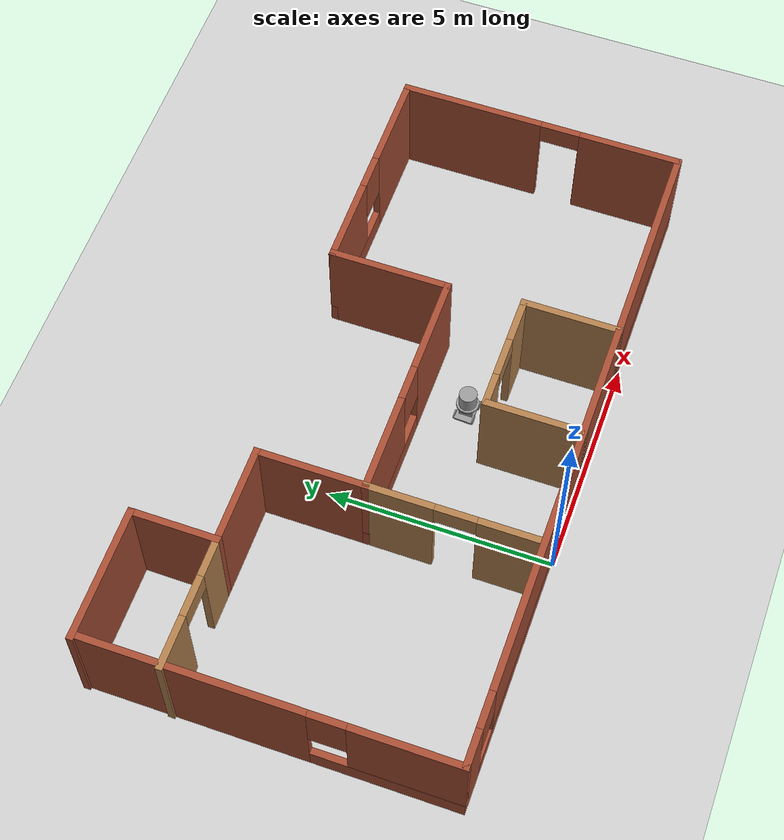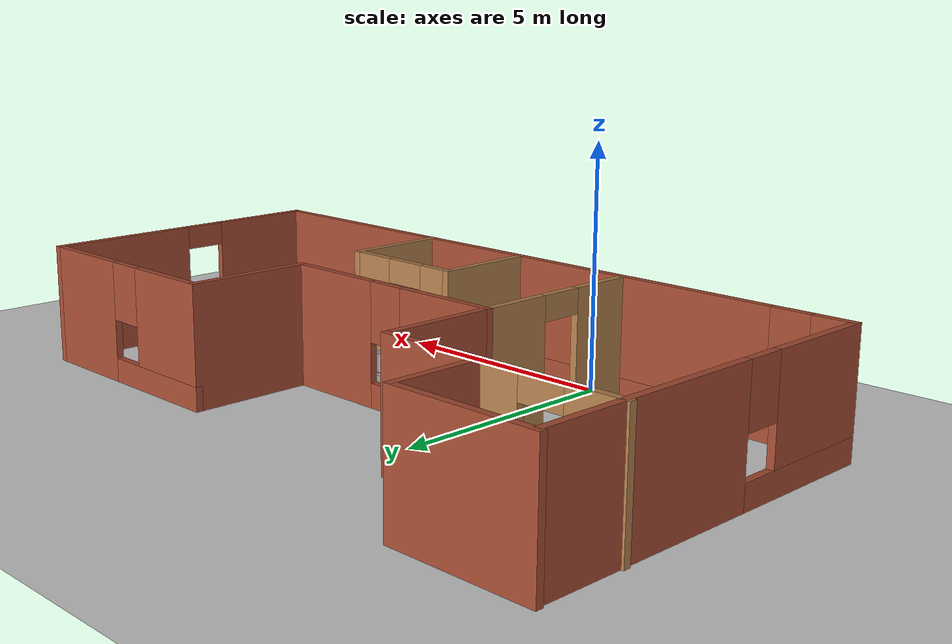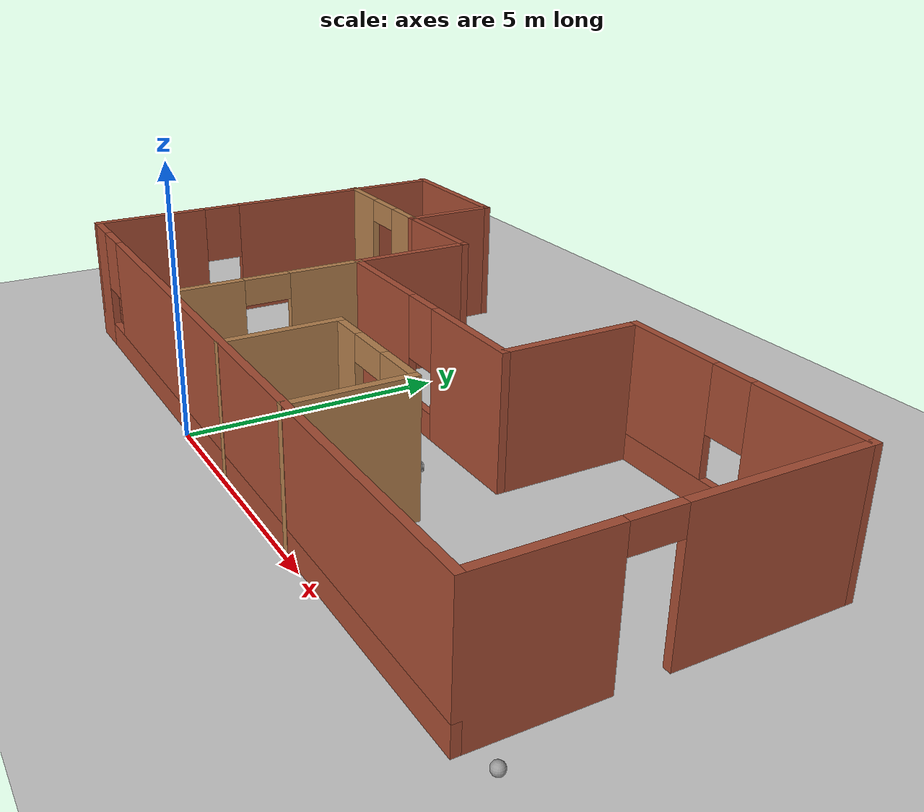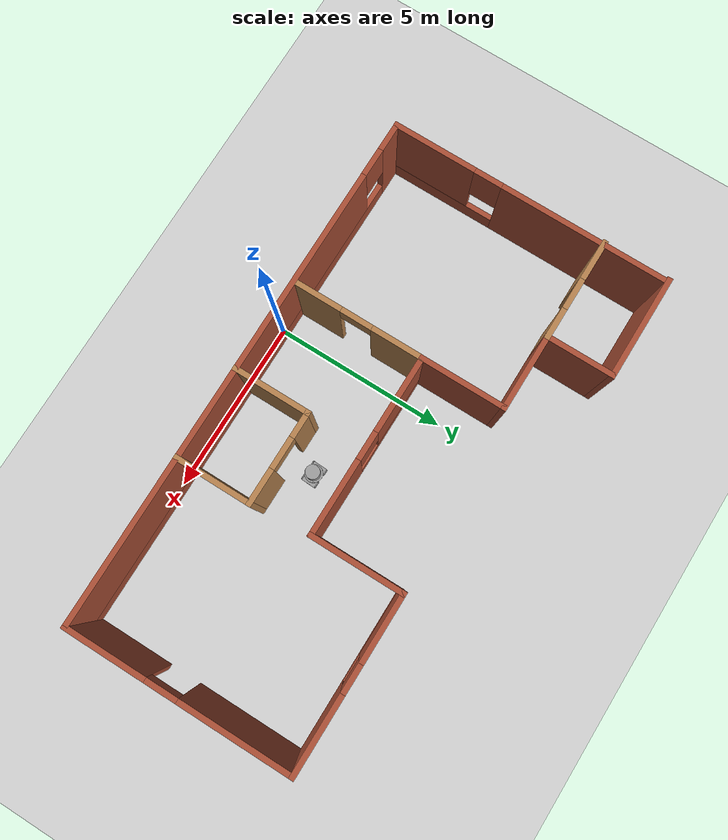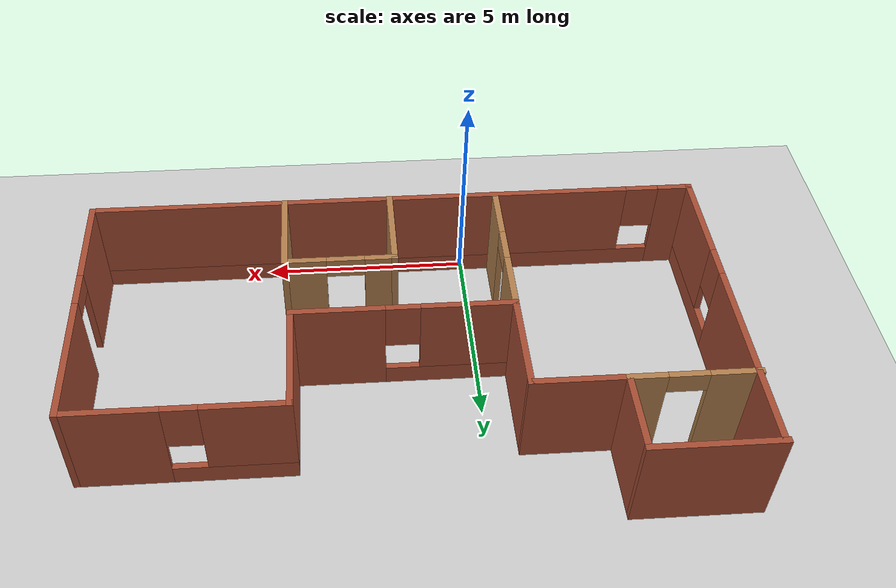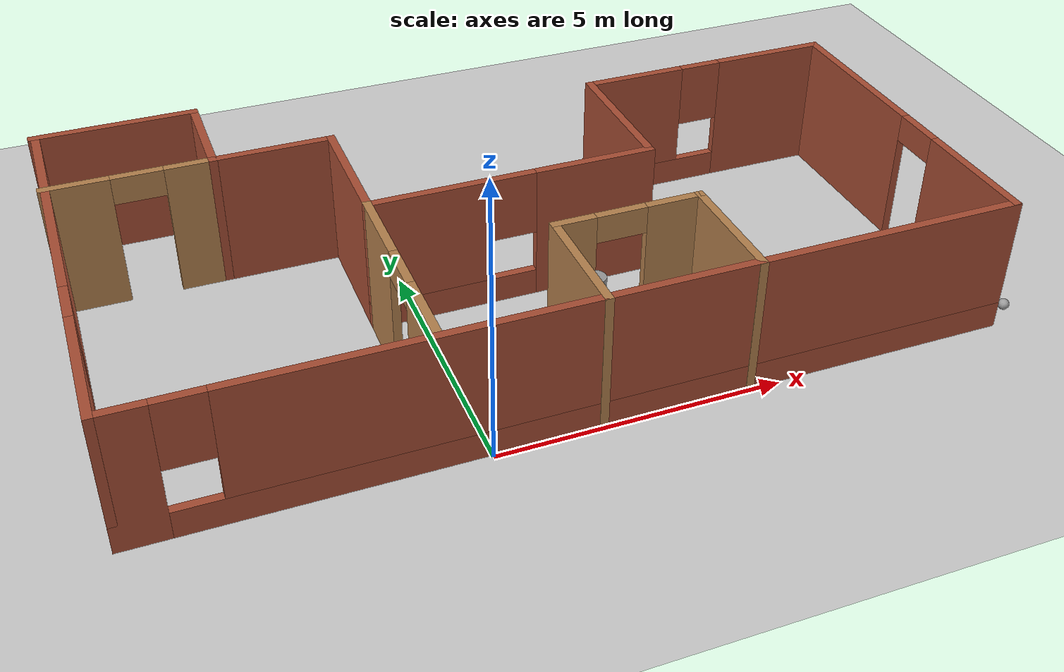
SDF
<sdf version="1.6">
 <world name="default">
  <model name="ground_plane">
   <static>1</static>
   <link name="link">
    <collision name="collision">
     <geometry><plane><normal>0 0 1</normal><size>100 100</size></plane></geometry>
     <surface>
      <contact><collide_bitmask>65535</collide_bitmask></contact>
      <friction><ode><mu>100</mu><mu2>50</mu2></ode></friction>
     </surface>
    </collision>
    <visual name="visual">
     <cast_shadows>0</cast_shadows>
     <geometry><plane><normal>0 0 1</normal><size>100 100</size></plane></geometry>
     <material>
      <script><uri>file://media/materials/scripts/gazebo.material</uri><name>Gazebo/Grey</name></script>
     </material>
    </visual>
   </link>
  </model>
  <model name="School">
   <pose>1.72931 4.07996 0 0 -0 0</pose>
   <link name="Wall_10">
    <collision name="Wall_10_Collision">
     <geometry><box><size>2.25 0.15 2.5</size></box></geometry>
     <pose>0 0 1.25 0 -0 0</pose>
    </collision>
    <visual name="Wall_10_Visual">
     <pose>0 0 1.25 0 -0 0</pose>
     <geometry><box><size>2.25 0.15 2.5</size></box></geometry>
     <material>
      <script><uri>file://media/materials/scripts/gazebo.material</uri><name>Gazebo/Bricks</name></script>
      <ambient>1 1 1 1</ambient>
     </material>
     <meta><layer>0</layer></meta>
    </visual>
    <pose>-3.55 2.12783 0 0 -0 3.14159</pose>
   </link>
   <link name="Wall_15">
    <collision name="Wall_15_Collision">
     <geometry><box><size>2 0.15 2.5</size></box></geometry>
     <pose>0 0 1.25 0 -0 0</pose>
    </collision>
    <visual name="Wall_15_Visual">
     <pose>0 0 1.25 0 -0 0</pose>
     <geometry><box><size>2 0.15 2.5</size></box></geometry>
     <material>
      <script><uri>file://media/materials/scripts/gazebo.material</uri><name>Gazebo/Bricks</name></script>
      <ambient>1 1 1 1</ambient>
     </material>
     <meta><layer>0</layer></meta>
    </visual>
    <pose>-4.6 3.05282 0 0 -0 1.5708</pose>
   </link>
   <link name="Wall_16">
    <collision name="Wall_16_Collision">
     <geometry><box><size>3 0.15 2.5</size></box></geometry>
     <pose>0 0 1.25 0 -0 0</pose>
    </collision>
    <visual name="Wall_16_Visual">
     <pose>0 0 1.25 0 -0 0</pose>
     <geometry><box><size>3 0.15 2.5</size></box></geometry>
     <material>
      <script><uri>file://media/materials/scripts/gazebo.material</uri><name>Gazebo/Bricks</name></script>
      <ambient>1 1 1 1</ambient>
     </material>
     <meta><layer>0</layer></meta>
    </visual>
    <pose>-6.025 3.97783 0 0 -0 3.14159</pose>
   </link>
   <link name="Wall_21">
    <pose>-6.025 2.12783 0 0 -0 3.14159</pose>
    <visual name="Wall_21_Visual_0">
     <pose>-1.04133 0 1.25 0 -0 0</pose>
     <geometry><box><size>0.91735 0.15 2.5</size></box></geometry>
     <material>
      <script><uri>file://media/materials/scripts/gazebo.material</uri><name>Gazebo/Wood</name></script>
      <ambient>1 1 1 1</ambient>
     </material>
     <meta><layer>0</layer></meta>
    </visual>
    <collision name="Wall_21_Collision_0">
     <geometry><box><size>0.91735 0.15 2.5</size></box></geometry>
     <pose>-1.04133 0 1.25 0 -0 0</pose>
    </collision>
    <visual name="Wall_21_Visual_1">
     <pose>0.908675 0 1.25 0 -0 0</pose>
     <geometry><box><size>1.18265 0.15 2.5</size></box></geometry>
     <material>
      <script><uri>file://media/materials/scripts/gazebo.material</uri><name>Gazebo/Wood</name></script>
      <ambient>1 1 1 1</ambient>
     </material>
     <meta><layer>0</layer></meta>
    </visual>
    <collision name="Wall_21_Collision_1">
     <geometry><box><size>1.18265 0.15 2.5</size></box></geometry>
     <pose>0.908675 0 1.25 0 -0 0</pose>
    </collision>
    <visual name="Wall_21_Visual_2">
     <pose>-0.13265 0 2.25 0 -0 0</pose>
     <geometry><box><size>0.9 0.15 0.5</size></box></geometry>
     <material>
      <script><uri>file://media/materials/scripts/gazebo.material</uri><name>Gazebo/Wood</name></script>
      <ambient>1 1 1 1</ambient>
     </material>
     <meta><layer>0</layer></meta>
    </visual>
    <collision name="Wall_21_Collision_2">
     <geometry><box><size>0.9 0.15 0.5</size></box></geometry>
     <pose>-0.13265 0 2.25 0 -0 0</pose>
    </collision>
   </link>
   <link name="Wall_23">
    <pose>-2.5 -2.02217 0 0 0 -1.5708</pose>
    <visual name="Wall_23_Visual_0">
     <pose>-1.11042 0 1.25 0 -0 0</pose>
     <geometry><box><size>1.52915 0.15 2.5</size></box></geometry>
     <material>
      <script><uri>file://media/materials/scripts/gazebo.material</uri><name>Gazebo/Wood</name></script>
      <ambient>1 1 1 1</ambient>
     </material>
     <meta><layer>0</layer></meta>
    </visual>
    <collision name="Wall_23_Collision_0">
     <geometry><box><size>1.52915 0.15 2.5</size></box></geometry>
     <pose>-1.11042 0 1.25 0 -0 0</pose>
    </collision>
    <visual name="Wall_23_Visual_1">
     <pose>1.21457 0 1.25 0 -0 0</pose>
     <geometry><box><size>1.32085 0.15 2.5</size></box></geometry>
     <material>
      <script><uri>file://media/materials/scripts/gazebo.material</uri><name>Gazebo/Wood</name></script>
      <ambient>1 1 1 1</ambient>
     </material>
     <meta><layer>0</layer></meta>
    </visual>
    <collision name="Wall_23_Collision_1">
     <geometry><box><size>1.32085 0.15 2.5</size></box></geometry>
     <pose>1.21457 0 1.25 0 -0 0</pose>
    </collision>
    <visual name="Wall_23_Visual_2">
     <pose>0.10415 0 2.25 0 -0 0</pose>
     <geometry><box><size>0.9 0.15 0.5</size></box></geometry>
     <material>
      <script><uri>file://media/materials/scripts/gazebo.material</uri><name>Gazebo/Wood</name></script>
      <ambient>1 1 1 1</ambient>
     </material>
     <meta><layer>0</layer></meta>
    </visual>
    <collision name="Wall_23_Collision_2">
     <geometry><box><size>0.9 0.15 0.5</size></box></geometry>
     <pose>0.10415 0 2.25 0 -0 0</pose>
    </collision>
   </link>
   <link name="Wall_25">
    <collision name="Wall_25_Collision">
     <geometry><box><size>2.25 0.15 2.5</size></box></geometry>
     <pose>0 0 1.25 0 -0 0</pose>
    </collision>
    <visual name="Wall_25_Visual">
     <pose>0 0 1.25 0 -0 0</pose>
     <geometry><box><size>2.25 0.15 2.5</size></box></geometry>
     <material>
      <script><uri>file://media/materials/scripts/gazebo.material</uri><name>Gazebo/Wood</name></script>
      <ambient>1 1 1 1</ambient>
     </material>
     <meta><layer>0</layer></meta>
    </visual>
    <pose>0.13825 -2.92782 0 0 -0 1.5708</pose>
   </link>
   <link name="Wall_26">
    <pose>1.43825 -1.87783 0 0 -0 0</pose>
    <visual name="Wall_26_Visual_0">
     <pose>-0.9806 0 1.25 0 -0 0</pose>
     <geometry><box><size>0.7888 0.15 2.5</size></box></geometry>
     <material>
      <script><uri>file://media/materials/scripts/gazebo.material</uri><name>Gazebo/Wood</name></script>
      <ambient>1 1 1 1</ambient>
     </material>
     <meta><layer>0</layer></meta>
    </visual>
    <collision name="Wall_26_Collision_0">
     <geometry><box><size>0.7888 0.15 2.5</size></box></geometry>
     <pose>-0.9806 0 1.25 0 -0 0</pose>
    </collision>
    <visual name="Wall_26_Visual_1">
     <pose>0.8444 0 1.25 0 -0 0</pose>
     <geometry><box><size>1.0612 0.15 2.5</size></box></geometry>
     <material>
      <script><uri>file://media/materials/scripts/gazebo.material</uri><name>Gazebo/Wood</name></script>
      <ambient>1 1 1 1</ambient>
     </material>
     <meta><layer>0</layer></meta>
    </visual>
    <collision name="Wall_26_Collision_1">
     <geometry><box><size>1.0612 0.15 2.5</size></box></geometry>
     <pose>0.8444 0 1.25 0 -0 0</pose>
    </collision>
    <visual name="Wall_26_Visual_2">
     <pose>-0.1362 0 2.25 0 -0 0</pose>
     <geometry><box><size>0.9 0.15 0.5</size></box></geometry>
     <material>
      <script><uri>file://media/materials/scripts/gazebo.material</uri><name>Gazebo/Wood</name></script>
      <ambient>1 1 1 1</ambient>
     </material>
     <meta><layer>0</layer></meta>
    </visual>
    <collision name="Wall_26_Collision_2">
     <geometry><box><size>0.9 0.15 0.5</size></box></geometry>
     <pose>-0.1362 0 2.25 0 -0 0</pose>
    </collision>
   </link>
   <link name="Wall_27">
    <collision name="Wall_27_Collision">
     <geometry><box><size>2.25 0.15 2.5</size></box></geometry>
     <pose>0 0 1.25 0 -0 0</pose>
    </collision>
    <visual name="Wall_27_Visual">
     <pose>0 0 1.25 0 -0 0</pose>
     <geometry><box><size>2.25 0.15 2.5</size></box></geometry>
     <material>
      <script><uri>file://media/materials/scripts/gazebo.material</uri><name>Gazebo/Wood</name></script>
      <ambient>1 1 1 1</ambient>
     </material>
     <meta><layer>0</layer></meta>
    </visual>
    <pose>2.73825 -2.92782 0 0 0 -1.5708</pose>
   </link>
   <link name="Wall_3">
    <pose>-7.4 -0.047175 0 0 0 -1.5708</pose>
    <visual name="Wall_3_Visual_0">
     <pose>-1.61007 0 1.25 0 -0 0</pose>
     <geometry><box><size>4.77985 0.15 2.5</size></box></geometry>
     <material>
      <script><uri>file://media/materials/scripts/gazebo.material</uri><name>Gazebo/Bricks</name></script>
      <ambient>1 1 1 1</ambient>
     </material>
     <meta><layer>0</layer></meta>
    </visual>
    <collision name="Wall_3_Collision_0">
     <geometry><box><size>4.77985 0.15 2.5</size></box></geometry>
     <pose>-1.61007 0 1.25 0 -0 0</pose>
    </collision>
    <visual name="Wall_3_Visual_1">
     <pose>2.38992 0 0.25 0 -0 0</pose>
     <geometry><box><size>3.22015 0.15 0.5</size></box></geometry>
     <material>
      <script><uri>file://media/materials/scripts/gazebo.material</uri><name>Gazebo/Bricks</name></script>
      <ambient>1 1 1 1</ambient>
     </material>
     <meta><layer>0</layer></meta>
    </visual>
    <collision name="Wall_3_Collision_1">
     <geometry><box><size>3.22015 0.15 0.5</size></box></geometry>
     <pose>2.38992 0 0.25 0 -0 0</pose>
    </collision>
    <visual name="Wall_3_Visual_2">
     <pose>2.78993 0 1.5 0 -0 0</pose>
     <geometry><box><size>2.42015 0.15 2</size></box></geometry>
     <material>
      <script><uri>file://media/materials/scripts/gazebo.material</uri><name>Gazebo/Bricks</name></script>
      <ambient>1 1 1 1</ambient>
     </material>
     <meta><layer>0</layer></meta>
    </visual>
    <collision name="Wall_3_Collision_2">
     <geometry><box><size>2.42015 0.15 2</size></box></geometry>
     <pose>2.78993 0 1.5 0 -0 0</pose>
    </collision>
    <visual name="Wall_3_Visual_3">
     <pose>1.17985 0 1.9 0 -0 0</pose>
     <geometry><box><size>0.8 0.15 1.2</size></box></geometry>
     <material>
      <script><uri>file://media/materials/scripts/gazebo.material</uri><name>Gazebo/Bricks</name></script>
      <ambient>1 1 1 1</ambient>
     </material>
     <meta><layer>0</layer></meta>
    </visual>
    <collision name="Wall_3_Collision_3">
     <geometry><box><size>0.8 0.15 1.2</size></box></geometry>
     <pose>1.17985 0 1.9 0 -0 0</pose>
    </collision>
   </link>
   <link name="Wall_4">
    <pose>0.024999 -3.97218 0 0 -0 0</pose>
    <visual name="Wall_4_Visual_0">
     <pose>-7.06738 0 1.25 0 -0 0</pose>
     <geometry><box><size>0.86525 0.15 2.5</size></box></geometry>
     <material>
      <script><uri>file://media/materials/scripts/gazebo.material</uri><name>Gazebo/Bricks</name></script>
      <ambient>1 1 1 1</ambient>
     </material>
     <meta><layer>0</layer></meta>
    </visual>
    <collision name="Wall_4_Collision_0">
     <geometry><box><size>0.86525 0.15 2.5</size></box></geometry>
     <pose>-7.06738 0 1.25 0 -0 0</pose>
    </collision>
    <visual name="Wall_4_Visual_1">
     <pose>0.432625 0 0.25 0 -0 0</pose>
     <geometry><box><size>14.1348 0.15 0.5</size></box></geometry>
     <material>
      <script><uri>file://media/materials/scripts/gazebo.material</uri><name>Gazebo/Bricks</name></script>
      <ambient>1 1 1 1</ambient>
     </material>
     <meta><layer>0</layer></meta>
    </visual>
    <collision name="Wall_4_Collision_1">
     <geometry><box><size>14.1348 0.15 0.5</size></box></geometry>
     <pose>0.432625 0 0.25 0 -0 0</pose>
    </collision>
    <visual name="Wall_4_Visual_2">
     <pose>0.832625 0 1.5 0 -0 0</pose>
     <geometry><box><size>13.3347 0.15 2</size></box></geometry>
     <material>
      <script><uri>file://media/materials/scripts/gazebo.material</uri><name>Gazebo/Bricks</name></script>
      <ambient>1 1 1 1</ambient>
     </material>
     <meta><layer>0</layer></meta>
    </visual>
    <collision name="Wall_4_Collision_2">
     <geometry><box><size>13.3347 0.15 2</size></box></geometry>
     <pose>0.832625 0 1.5 0 -0 0</pose>
    </collision>
    <visual name="Wall_4_Visual_3">
     <pose>-6.23475 0 1.9 0 -0 0</pose>
     <geometry><box><size>0.8 0.15 1.2</size></box></geometry>
     <material>
      <script><uri>file://media/materials/scripts/gazebo.material</uri><name>Gazebo/Bricks</name></script>
      <ambient>1 1 1 1</ambient>
     </material>
     <meta><layer>0</layer></meta>
    </visual>
    <collision name="Wall_4_Collision_3">
     <geometry><box><size>0.8 0.15 1.2</size></box></geometry>
     <pose>-6.23475 0 1.9 0 -0 0</pose>
    </collision>
   </link>
   <link name="Wall_5">
    <pose>7.45 -0.797175 0 0 -0 1.5708</pose>
    <visual name="Wall_5_Visual_0">
     <pose>-2.07815 0 1.25 0 -0 0</pose>
     <geometry><box><size>2.3437 0.15 2.5</size></box></geometry>
     <material>
      <script><uri>file://media/materials/scripts/gazebo.material</uri><name>Gazebo/Bricks</name></script>
      <ambient>0.435294 0.796078 0.67451 1</ambient>
     </material>
     <meta><layer>0</layer></meta>
    </visual>
    <collision name="Wall_5_Collision_0">
     <geometry><box><size>2.3437 0.15 2.5</size></box></geometry>
     <pose>-2.07815 0 1.25 0 -0 0</pose>
    </collision>
    <visual name="Wall_5_Visual_1">
     <pose>1.62185 0 1.25 0 -0 0</pose>
     <geometry><box><size>3.2563 0.15 2.5</size></box></geometry>
     <material>
      <script><uri>file://media/materials/scripts/gazebo.material</uri><name>Gazebo/Bricks</name></script>
      <ambient>0.435294 0.796078 0.67451 1</ambient>
     </material>
     <meta><layer>0</layer></meta>
    </visual>
    <collision name="Wall_5_Collision_1">
     <geometry><box><size>3.2563 0.15 2.5</size></box></geometry>
     <pose>1.62185 0 1.25 0 -0 0</pose>
    </collision>
    <visual name="Wall_5_Visual_2">
     <pose>-0.4563 0 2.25 0 -0 0</pose>
     <geometry><box><size>0.9 0.15 0.5</size></box></geometry>
     <material>
      <script><uri>file://media/materials/scripts/gazebo.material</uri><name>Gazebo/Bricks</name></script>
      <ambient>0.435294 0.796078 0.67451 1</ambient>
     </material>
     <meta><layer>0</layer></meta>
    </visual>
    <collision name="Wall_5_Collision_2">
     <geometry><box><size>0.9 0.15 0.5</size></box></geometry>
     <pose>-0.4563 0 2.25 0 -0 0</pose>
    </collision>
   </link>
   <link name="Wall_6">
    <pose>5.025 2.37783 0 0 -0 3.14159</pose>
    <visual name="Wall_6_Visual_0">
     <pose>-1.38712 0 1.25 0 -0 0</pose>
     <geometry><box><size>2.22575 0.15 2.5</size></box></geometry>
     <material>
      <script><uri>file://media/materials/scripts/gazebo.material</uri><name>Gazebo/Bricks</name></script>
      <ambient>1 1 1 1</ambient>
     </material>
     <meta><layer>0</layer></meta>
    </visual>
    <collision name="Wall_6_Collision_0">
     <geometry><box><size>2.22575 0.15 2.5</size></box></geometry>
     <pose>-1.38712 0 1.25 0 -0 0</pose>
    </collision>
    <visual name="Wall_6_Visual_1">
     <pose>1.11288 0 0.25 0 -0 0</pose>
     <geometry><box><size>2.77425 0.15 0.5</size></box></geometry>
     <material>
      <script><uri>file://media/materials/scripts/gazebo.material</uri><name>Gazebo/Bricks</name></script>
      <ambient>1 1 1 1</ambient>
     </material>
     <meta><layer>0</layer></meta>
    </visual>
    <collision name="Wall_6_Collision_1">
     <geometry><box><size>2.77425 0.15 0.5</size></box></geometry>
     <pose>1.11288 0 0.25 0 -0 0</pose>
    </collision>
    <visual name="Wall_6_Visual_2">
     <pose>1.51287 0 1.5 0 -0 0</pose>
     <geometry><box><size>1.97425 0.15 2</size></box></geometry>
     <material>
      <script><uri>file://media/materials/scripts/gazebo.material</uri><name>Gazebo/Bricks</name></script>
      <ambient>1 1 1 1</ambient>
     </material>
     <meta><layer>0</layer></meta>
    </visual>
    <collision name="Wall_6_Collision_2">
     <geometry><box><size>1.97425 0.15 2</size></box></geometry>
     <pose>1.51287 0 1.5 0 -0 0</pose>
    </collision>
    <visual name="Wall_6_Visual_3">
     <pose>0.12575 0 1.9 0 -0 0</pose>
     <geometry><box><size>0.8 0.15 1.2</size></box></geometry>
     <material>
      <script><uri>file://media/materials/scripts/gazebo.material</uri><name>Gazebo/Bricks</name></script>
      <ambient>1 1 1 1</ambient>
     </material>
     <meta><layer>0</layer></meta>
    </visual>
    <collision name="Wall_6_Collision_3">
     <geometry><box><size>0.8 0.15 1.2</size></box></geometry>
     <pose>0.12575 0 1.9 0 -0 0</pose>
    </collision>
   </link>
   <link name="Wall_7">
    <collision name="Wall_7_Collision">
     <geometry><box><size>2.75 0.15 2.5</size></box></geometry>
     <pose>0 0 1.25 0 -0 0</pose>
    </collision>
    <visual name="Wall_7_Visual">
     <pose>0 0 1.25 0 -0 0</pose>
     <geometry><box><size>2.75 0.15 2.5</size></box></geometry>
     <material>
      <script><uri>file://media/materials/scripts/gazebo.material</uri><name>Gazebo/Bricks</name></script>
      <ambient>1 1 1 1</ambient>
     </material>
     <meta><layer>0</layer></meta>
    </visual>
    <pose>2.6 1.07783 0 0 0 -1.5708</pose>
   </link>
   <link name="Wall_8">
    <pose>0.05 -0.222175 0 0 -0 3.14159</pose>
    <visual name="Wall_8_Visual_0">
     <pose>-1.51695 0 1.25 0 -0 0</pose>
     <geometry><box><size>2.2161 0.15 2.5</size></box></geometry>
     <material>
      <script><uri>file://media/materials/scripts/gazebo.material</uri><name>Gazebo/Bricks</name></script>
      <ambient>1 1 1 1</ambient>
     </material>
     <meta><layer>0</layer></meta>
    </visual>
    <collision name="Wall_8_Collision_0">
     <geometry><box><size>2.2161 0.15 2.5</size></box></geometry>
     <pose>-1.51695 0 1.25 0 -0 0</pose>
    </collision>
    <visual name="Wall_8_Visual_1">
     <pose>1.10805 0 0.25 0 -0 0</pose>
     <geometry><box><size>3.0339 0.15 0.5</size></box></geometry>
     <material>
      <script><uri>file://media/materials/scripts/gazebo.material</uri><name>Gazebo/Bricks</name></script>
      <ambient>1 1 1 1</ambient>
     </material>
     <meta><layer>0</layer></meta>
    </visual>
    <collision name="Wall_8_Collision_1">
     <geometry><box><size>3.0339 0.15 0.5</size></box></geometry>
     <pose>1.10805 0 0.25 0 -0 0</pose>
    </collision>
    <visual name="Wall_8_Visual_2">
     <pose>1.50805 0 1.5 0 -0 0</pose>
     <geometry><box><size>2.2339 0.15 2</size></box></geometry>
     <material>
      <script><uri>file://media/materials/scripts/gazebo.material</uri><name>Gazebo/Bricks</name></script>
      <ambient>1 1 1 1</ambient>
     </material>
     <meta><layer>0</layer></meta>
    </visual>
    <collision name="Wall_8_Collision_2">
     <geometry><box><size>2.2339 0.15 2</size></box></geometry>
     <pose>1.50805 0 1.5 0 -0 0</pose>
    </collision>
    <visual name="Wall_8_Visual_3">
     <pose>-0.0089 0 1.9 0 -0 0</pose>
     <geometry><box><size>0.8 0.15 1.2</size></box></geometry>
     <material>
      <script><uri>file://media/materials/scripts/gazebo.material</uri><name>Gazebo/Bricks</name></script>
      <ambient>1 1 1 1</ambient>
     </material>
     <meta><layer>0</layer></meta>
    </visual>
    <collision name="Wall_8_Collision_3">
     <geometry><box><size>0.8 0.15 1.2</size></box></geometry>
     <pose>-0.0089 0 1.9 0 -0 0</pose>
    </collision>
   </link>
   <link name="Wall_9">
    <collision name="Wall_9_Collision">
     <geometry><box><size>2.5 0.15 2.5</size></box></geometry>
     <pose>0 0 1.25 0 -0 0</pose>
    </collision>
    <visual name="Wall_9_Visual">
     <pose>0 0 1.25 0 -0 0</pose>
     <geometry><box><size>2.5 0.15 2.5</size></box></geometry>
     <material>
      <script><uri>file://media/materials/scripts/gazebo.material</uri><name>Gazebo/Bricks</name></script>
      <ambient>1 1 1 1</ambient>
     </material>
     <meta><layer>0</layer></meta>
    </visual>
    <pose>-2.5 0.952825 0 0 -0 1.5708</pose>
   </link>
   <static>1</static>
  </model>
  <model name="4x4_robot">
   <link name="link_0">
    <pose>-0 0 -0.02 0 -0 0</pose>
    <inertial>
     <mass>1</mass>
     <inertia>
      <ixx>0.166667</ixx>
      <ixy>0</ixy>
      <ixz>0</ixz>
      <iyy>0.166667</iyy>
      <iyz>0</iyz>
      <izz>0.166667</izz>
     </inertia>
    </inertial>
    <visual name="visual">
     <geometry><box><size>0.6 0.4 0.05</size></box></geometry>
     <material>
      <lighting>1</lighting>
      <script><uri>file://media/materials/scripts/gazebo.material</uri><name>Gazebo/Grey</name></script>
      <shader type="pixel"><normal_map>__default__</normal_map></shader>
      <ambient>0.3 0.3 0.3 1</ambient>
      <diffuse>0.7 0.7 0.7 1</diffuse>
      <specular>0.01 0.01 0.01 1</specular>
      <emissive>0 0 0 1</emissive>
     </material>
    </visual>
    <collision name="collision">
     <geometry><box><size>0.6 0.4 0.05</size></box></geometry>
     <surface>
      <friction>
       <ode><mu>1</mu><mu2>1</mu2><fdir1>0 0 0</fdir1><slip1>0</slip1><slip2>0</slip2></ode>
       <torsional>
        <coefficient>1</coefficient>
        <patch_radius>0</patch_radius>
        <surface_radius>0</surface_radius>
        <use_patch_radius>1</use_patch_radius>
        <ode><slip>0</slip></ode>
       </torsional>
      </friction>
      <bounce><restitution_coefficient>0</restitution_coefficient><threshold>1e+06</threshold></bounce>
      <contact>
       <collide_without_contact>0</collide_without_contact>
       <collide_without_contact_bitmask>1</collide_without_contact_bitmask>
       <collide_bitmask>1</collide_bitmask>
       <ode>
        <soft_cfm>0</soft_cfm>
        <soft_erp>0.2</soft_erp>
        <kp>1e+13</kp>
        <kd>1</kd>
        <max_vel>0.01</max_vel>
        <min_depth>0</min_depth>
       </ode>
       <bullet>
        <split_impulse>1</split_impulse>
        <split_impulse_penetration_threshold>-0.01</split_impulse_penetration_threshold>
        <soft_cfm>0</soft_cfm>
        <soft_erp>0.2</soft_erp>
        <kp>1e+13</kp>
        <kd>1</kd>
       </bullet>
      </contact>
     </surface>
    </collision>
   </link>
   <link name="link_0_0">
    <pose>9.4e-05 1e-06 0.104673 2.5e-05 0.001086 0.029379</pose>
    <inertial>
     <mass>1</mass>
     <inertia>
      <ixx>0.166667</ixx>
      <ixy>0</ixy>
      <ixz>0</ixz>
      <iyy>0.166667</iyy>
      <iyz>0</iyz>
      <izz>0.166667</izz>
     </inertia>
    </inertial>
    <visual name="visual">
     <geometry><box><size>0.3 0.3 0.3</size></box></geometry>
     <material>
      <lighting>1</lighting>
      <script><uri>file://media/materials/scripts/gazebo.material</uri><name>Gazebo/Grey</name></script>
      <shader type="pixel"><normal_map>__default__</normal_map></shader>
      <ambient>0.3 0.3 0.3 1</ambient>
      <diffuse>0.7 0.7 0.7 1</diffuse>
      <specular>0.01 0.01 0.01 1</specular>
      <emissive>0 0 0 1</emissive>
     </material>
    </visual>
    <collision name="collision">
     <geometry><box><size>0.3 0.3 0.3</size></box></geometry>
     <surface>
      <friction>
       <ode><mu>1</mu><mu2>1</mu2><fdir1>0 0 0</fdir1><slip1>0</slip1><slip2>0</slip2></ode>
       <torsional>
        <coefficient>1</coefficient>
        <patch_radius>0</patch_radius>
        <surface_radius>0</surface_radius>
        <use_patch_radius>1</use_patch_radius>
        <ode><slip>0</slip></ode>
       </torsional>
      </friction>
      <bounce><restitution_coefficient>0</restitution_coefficient><threshold>1e+06</threshold></bounce>
      <contact>
       <collide_without_contact>0</collide_without_contact>
       <collide_without_contact_bitmask>1</collide_without_contact_bitmask>
       <collide_bitmask>1</collide_bitmask>
       <ode>
        <soft_cfm>0</soft_cfm>
        <soft_erp>0.2</soft_erp>
        <kp>1e+13</kp>
        <kd>1</kd>
        <max_vel>0.01</max_vel>
        <min_depth>0</min_depth>
       </ode>
       <bullet>
        <split_impulse>1</split_impulse>
        <split_impulse_penetration_threshold>-0.01</split_impulse_penetration_threshold>
        <soft_cfm>0</soft_cfm>
        <soft_erp>0.2</soft_erp>
        <kp>1e+13</kp>
        <kd>1</kd>
       </bullet>
      </contact>
     </surface>
    </collision>
   </link>
   <link name="link_1">
    <pose>0.2 0.2125 0.005 1.5708 -0 0</pose>
    <inertial>
     <mass>1</mass>
     <inertia><ixx>0.145833</ixx><ixy>0</ixy><ixz>0</ixz><iyy>0.145833</iyy><iyz>0</iyz><izz>0.125</izz></inertia>
    </inertial>
    <visual name="visual">
     <geometry><cylinder><radius>0.1</radius><length>0.025</length></cylinder></geometry>
     <material>
      <lighting>1</lighting>
      <script><uri>file://media/materials/scripts/gazebo.material</uri><name>Gazebo/Grey</name></script>
      <shader type="pixel"><normal_map>__default__</normal_map></shader>
      <ambient>0.3 0.3 0.3 1</ambient>
      <diffuse>0.7 0.7 0.7 1</diffuse>
      <specular>0.01 0.01 0.01 1</specular>
      <emissive>0 0 0 1</emissive>
     </material>
    </visual>
    <collision name="collision">
     <geometry><cylinder><radius>0.1</radius><length>0.025</length></cylinder></geometry>
     <surface>
      <friction>
       <ode><mu>1</mu><mu2>1</mu2><fdir1>0 0 0</fdir1><slip1>0</slip1><slip2>0</slip2></ode>
       <torsional>
        <coefficient>1</coefficient>
        <patch_radius>0</patch_radius>
        <surface_radius>0</surface_radius>
        <use_patch_radius>1</use_patch_radius>
        <ode><slip>0</slip></ode>
       </torsional>
      </friction>
      <bounce><restitution_coefficient>0</restitution_coefficient><threshold>1e+06</threshold></bounce>
      <contact>
       <collide_without_contact>0</collide_without_contact>
       <collide_without_contact_bitmask>1</collide_without_contact_bitmask>
       <collide_bitmask>1</collide_bitmask>
       <ode>
        <soft_cfm>0</soft_cfm>
        <soft_erp>0.2</soft_erp>
        <kp>1e+13</kp>
        <kd>1</kd>
        <max_vel>0.01</max_vel>
        <min_depth>0</min_depth>
       </ode>
       <bullet>
        <split_impulse>1</split_impulse>
        <split_impulse_penetration_threshold>-0.01</split_impulse_penetration_threshold>
        <soft_cfm>0</soft_cfm>
        <soft_erp>0.2</soft_erp>
        <kp>1e+13</kp>
        <kd>1</kd>
       </bullet>
      </contact>
     </surface>
    </collision>
   </link>
   <link name="link_1_0">
    <pose>0.000268 2e-06 0.264673 2.5e-05 0.001086 0.029379</pose>
    <inertial>
     <mass>1</mass>
     <inertia><ixx>0.145833</ixx><ixy>0</ixy><ixz>0</ixz><iyy>0.145833</iyy><iyz>0</iyz><izz>0.125</izz></inertia>
    </inertial>
    <visual name="visual">
     <geometry><cylinder><radius>0.25</radius><length>0.05</length></cylinder></geometry>
     <material>
      <lighting>1</lighting>
      <script><uri>file://media/materials/scripts/gazebo.material</uri><name>Gazebo/Grey</name></script>
      <shader type="pixel"><normal_map>__default__</normal_map></shader>
      <ambient>0.3 0.3 0.3 1</ambient>
      <diffuse>0.7 0.7 0.7 1</diffuse>
      <specular>0.01 0.01 0.01 1</specular>
      <emissive>0 0 0 1</emissive>
     </material>
    </visual>
    <collision name="collision">
     <geometry><cylinder><radius>0.25</radius><length>0.05</length></cylinder></geometry>
     <surface>
      <friction>
       <ode><mu>1</mu><mu2>1</mu2><fdir1>0 0 0</fdir1><slip1>0</slip1><slip2>0</slip2></ode>
       <torsional>
        <coefficient>1</coefficient>
        <patch_radius>0</patch_radius>
        <surface_radius>0</surface_radius>
        <use_patch_radius>1</use_patch_radius>
        <ode><slip>0</slip></ode>
       </torsional>
      </friction>
      <bounce><restitution_coefficient>0</restitution_coefficient><threshold>1e+06</threshold></bounce>
      <contact>
       <collide_without_contact>0</collide_without_contact>
       <collide_without_contact_bitmask>1</collide_without_contact_bitmask>
       <collide_bitmask>1</collide_bitmask>
       <ode>
        <soft_cfm>0</soft_cfm>
        <soft_erp>0.2</soft_erp>
        <kp>1e+13</kp>
        <kd>1</kd>
        <max_vel>0.01</max_vel>
        <min_depth>0</min_depth>
       </ode>
       <bullet>
        <split_impulse>1</split_impulse>
        <split_impulse_penetration_threshold>-0.01</split_impulse_penetration_threshold>
        <soft_cfm>0</soft_cfm>
        <soft_erp>0.2</soft_erp>
        <kp>1e+13</kp>
        <kd>1</kd>
       </bullet>
      </contact>
     </surface>
    </collision>
   </link>
   <link name="link_1_clone">
    <pose>-0.2 -0.2125 0.005 1.5708 -0 0</pose>
    <inertial>
     <mass>1</mass>
     <inertia><ixx>0.145833</ixx><ixy>0</ixy><ixz>0</ixz><iyy>0.145833</iyy><iyz>0</iyz><izz>0.125</izz></inertia>
    </inertial>
    <visual name="visual">
     <geometry><cylinder><radius>0.1</radius><length>0.025</length></cylinder></geometry>
     <material>
      <lighting>1</lighting>
      <script><uri>file://media/materials/scripts/gazebo.material</uri><name>Gazebo/Grey</name></script>
      <shader type="pixel"><normal_map>__default__</normal_map></shader>
      <ambient>0.3 0.3 0.3 1</ambient>
      <diffuse>0.7 0.7 0.7 1</diffuse>
      <specular>0.01 0.01 0.01 1</specular>
      <emissive>0 0 0 1</emissive>
     </material>
    </visual>
    <collision name="collision">
     <geometry><cylinder><radius>0.1</radius><length>0.025</length></cylinder></geometry>
     <surface>
      <friction>
       <ode><mu>1</mu><mu2>1</mu2><fdir1>0 0 0</fdir1><slip1>0</slip1><slip2>0</slip2></ode>
       <torsional>
        <coefficient>1</coefficient>
        <patch_radius>0</patch_radius>
        <surface_radius>0</surface_radius>
        <use_patch_radius>1</use_patch_radius>
        <ode><slip>0</slip></ode>
       </torsional>
      </friction>
      <bounce><restitution_coefficient>0</restitution_coefficient><threshold>1e+06</threshold></bounce>
      <contact>
       <collide_without_contact>0</collide_without_contact>
       <collide_without_contact_bitmask>1</collide_without_contact_bitmask>
       <collide_bitmask>1</collide_bitmask>
       <ode>
        <soft_cfm>0</soft_cfm>
        <soft_erp>0.2</soft_erp>
        <kp>1e+13</kp>
        <kd>1</kd>
        <max_vel>0.01</max_vel>
        <min_depth>0</min_depth>
       </ode>
       <bullet>
        <split_impulse>1</split_impulse>
        <split_impulse_penetration_threshold>-0.01</split_impulse_penetration_threshold>
        <soft_cfm>0</soft_cfm>
        <soft_erp>0.2</soft_erp>
        <kp>1e+13</kp>
        <kd>1</kd>
       </bullet>
      </contact>
     </surface>
    </collision>
   </link>
   <link name="link_1_clone_0">
    <pose>-0.2 0.2125 0.005 1.5708 -0 0</pose>
    <inertial>
     <mass>1</mass>
     <inertia><ixx>0.145833</ixx><ixy>0</ixy><ixz>0</ixz><iyy>0.145833</iyy><iyz>0</iyz><izz>0.125</izz></inertia>
    </inertial>
    <visual name="visual">
     <geometry><cylinder><radius>0.1</radius><length>0.025</length></cylinder></geometry>
     <material>
      <lighting>1</lighting>
      <script><uri>file://media/materials/scripts/gazebo.material</uri><name>Gazebo/Grey</name></script>
      <shader type="pixel"><normal_map>__default__</normal_map></shader>
      <ambient>0.3 0.3 0.3 1</ambient>
      <diffuse>0.7 0.7 0.7 1</diffuse>
      <specular>0.01 0.01 0.01 1</specular>
      <emissive>0 0 0 1</emissive>
     </material>
    </visual>
    <collision name="collision">
     <geometry><cylinder><radius>0.1</radius><length>0.025</length></cylinder></geometry>
     <surface>
      <friction>
       <ode><mu>1</mu><mu2>1</mu2><fdir1>0 0 0</fdir1><slip1>0</slip1><slip2>0</slip2></ode>
       <torsional>
        <coefficient>1</coefficient>
        <patch_radius>0</patch_radius>
        <surface_radius>0</surface_radius>
        <use_patch_radius>1</use_patch_radius>
        <ode><slip>0</slip></ode>
       </torsional>
      </friction>
      <bounce><restitution_coefficient>0</restitution_coefficient><threshold>1e+06</threshold></bounce>
      <contact>
       <collide_without_contact>0</collide_without_contact>
       <collide_without_contact_bitmask>1</collide_without_contact_bitmask>
       <collide_bitmask>1</collide_bitmask>
       <ode>
        <soft_cfm>0</soft_cfm>
        <soft_erp>0.2</soft_erp>
        <kp>1e+13</kp>
        <kd>1</kd>
        <max_vel>0.01</max_vel>
        <min_depth>0</min_depth>
       </ode>
       <bullet>
        <split_impulse>1</split_impulse>
        <split_impulse_penetration_threshold>-0.01</split_impulse_penetration_threshold>
        <soft_cfm>0</soft_cfm>
        <soft_erp>0.2</soft_erp>
        <kp>1e+13</kp>
        <kd>1</kd>
       </bullet>
      </contact>
     </surface>
    </collision>
   </link>
   <link name="link_1_clone_1">
    <pose>0.2 -0.2125 0.005 1.5708 -0 0</pose>
    <inertial>
     <mass>1</mass>
     <inertia><ixx>0.145833</ixx><ixy>0</ixy><ixz>0</ixz><iyy>0.145833</iyy><iyz>0</iyz><izz>0.125</izz></inertia>
    </inertial>
    <visual name="visual">
     <geometry><cylinder><radius>0.1</radius><length>0.025</length></cylinder></geometry>
     <material>
      <lighting>1</lighting>
      <script><uri>file://media/materials/scripts/gazebo.material</uri><name>Gazebo/Grey</name></script>
      <shader type="pixel"><normal_map>__default__</normal_map></shader>
      <ambient>0.3 0.3 0.3 1</ambient>
      <diffuse>0.7 0.7 0.7 1</diffuse>
      <specular>0.01 0.01 0.01 1</specular>
      <emissive>0 0 0 1</emissive>
     </material>
    </visual>
    <collision name="collision">
     <geometry><cylinder><radius>0.1</radius><length>0.025</length></cylinder></geometry>
     <surface>
      <friction>
       <ode><mu>1</mu><mu2>1</mu2><fdir1>0 0 0</fdir1><slip1>0</slip1><slip2>0</slip2></ode>
       <torsional>
        <coefficient>1</coefficient>
        <patch_radius>0</patch_radius>
        <surface_radius>0</surface_radius>
        <use_patch_radius>1</use_patch_radius>
        <ode><slip>0</slip></ode>
       </torsional>
      </friction>
      <bounce><restitution_coefficient>0</restitution_coefficient><threshold>1e+06</threshold></bounce>
      <contact>
       <collide_without_contact>0</collide_without_contact>
       <collide_without_contact_bitmask>1</collide_without_contact_bitmask>
       <collide_bitmask>1</collide_bitmask>
       <ode>
        <soft_cfm>0</soft_cfm>
        <soft_erp>0.2</soft_erp>
        <kp>1e+13</kp>
        <kd>1</kd>
        <max_vel>0.01</max_vel>
        <min_depth>0</min_depth>
       </ode>
       <bullet>
        <split_impulse>1</split_impulse>
        <split_impulse_penetration_threshold>-0.01</split_impulse_penetration_threshold>
        <soft_cfm>0</soft_cfm>
        <soft_erp>0.2</soft_erp>
        <kp>1e+13</kp>
        <kd>1</kd>
       </bullet>
      </contact>
     </surface>
    </collision>
   </link>
   <link name="link_2">
    <pose>0.000485 4e-06 0.464673 2.5e-05 0.001086 0.029379</pose>
    <inertial>
     <mass>1</mass>
     <inertia><ixx>0.145833</ixx><ixy>0</ixy><ixz>0</ixz><iyy>0.145833</iyy><iyz>0</iyz><izz>0.125</izz></inertia>
    </inertial>
    <visual name="visual">
     <geometry><cylinder><radius>0.2</radius><length>0.4</length></cylinder></geometry>
     <material>
      <lighting>1</lighting>
      <script><uri>file://media/materials/scripts/gazebo.material</uri><name>Gazebo/Grey</name></script>
      <shader type="pixel"><normal_map>__default__</normal_map></shader>
      <ambient>0.3 0.3 0.3 1</ambient>
      <diffuse>0.7 0.7 0.7 1</diffuse>
      <specular>0.01 0.01 0.01 1</specular>
      <emissive>0 0 0 1</emissive>
     </material>
    </visual>
    <collision name="collision">
     <geometry><cylinder><radius>0.2</radius><length>0.4</length></cylinder></geometry>
     <surface>
      <friction>
       <ode><mu>1</mu><mu2>1</mu2><fdir1>0 0 0</fdir1><slip1>0</slip1><slip2>0</slip2></ode>
       <torsional>
        <coefficient>1</coefficient>
        <patch_radius>0</patch_radius>
        <surface_radius>0</surface_radius>
        <use_patch_radius>1</use_patch_radius>
        <ode><slip>0</slip></ode>
       </torsional>
      </friction>
      <bounce><restitution_coefficient>0</restitution_coefficient><threshold>1e+06</threshold></bounce>
      <contact>
       <collide_without_contact>0</collide_without_contact>
       <collide_without_contact_bitmask>1</collide_without_contact_bitmask>
       <collide_bitmask>1</collide_bitmask>
       <ode>
        <soft_cfm>0</soft_cfm>
        <soft_erp>0.2</soft_erp>
        <kp>1e+13</kp>
        <kd>1</kd>
        <max_vel>0.01</max_vel>
        <min_depth>0</min_depth>
       </ode>
       <bullet>
        <split_impulse>1</split_impulse>
        <split_impulse_penetration_threshold>-0.01</split_impulse_penetration_threshold>
        <soft_cfm>0</soft_cfm>
        <soft_erp>0.2</soft_erp>
        <kp>1e+13</kp>
        <kd>1</kd>
       </bullet>
      </contact>
     </surface>
    </collision>
   </link>
   <joint name="link_0_0_JOINT_1" type="fixed">
    <parent>link_0_0</parent>
    <child>link_1_0</child>
    <physics>
     <ode><limit><cfm>0</cfm><erp>0.2</erp></limit><suspension><cfm>0</cfm><erp>0.2</erp></suspension></ode>
    </physics>
   </joint>
   <joint name="link_0_JOINT_0_0" type="fixed">
    <parent>link_0</parent>
    <child>link_0_0</child>
    <physics>
     <ode><limit><cfm>0</cfm><erp>0.2</erp></limit><suspension><cfm>0</cfm><erp>0.2</erp></suspension></ode>
    </physics>
   </joint>
   <joint name="link_0_JOINT_0" type="revolute">
    <parent>link_0</parent>
    <child>link_1_clone</child>
    <axis>
     <xyz>0 0 1</xyz>
     <use_parent_model_frame>0</use_parent_model_frame>
     <limit>
      <lower>-1.79769e+308</lower>
      <upper>1.79769e+308</upper>
      <effort>-1</effort>
      <velocity>-1</velocity>
     </limit>
     <dynamics>
      <spring_reference>0</spring_reference>
      <spring_stiffness>0</spring_stiffness>
      <damping>0</damping>
      <friction>0</friction>
     </dynamics>
    </axis>
    <physics>
     <ode><limit><cfm>0</cfm><erp>0.2</erp></limit><suspension><cfm>0</cfm><erp>0.2</erp></suspension></ode>
    </physics>
   </joint>
   <joint name="link_0_JOINT_1" type="revolute">
    <parent>link_0</parent>
    <child>link_1_clone_1</child>
    <axis>
     <xyz>0 0 1</xyz>
     <use_parent_model_frame>0</use_parent_model_frame>
     <limit>
      <lower>-1.79769e+308</lower>
      <upper>1.79769e+308</upper>
      <effort>-1</effort>
      <velocity>-1</velocity>
     </limit>
     <dynamics>
      <spring_reference>0</spring_reference>
      <spring_stiffness>0</spring_stiffness>
      <damping>0</damping>
      <friction>0</friction>
     </dynamics>
    </axis>
    <physics>
     <ode><limit><cfm>0</cfm><erp>0.2</erp></limit><suspension><cfm>0</cfm><erp>0.2</erp></suspension></ode>
    </physics>
   </joint>
   <joint name="link_0_JOINT_2" type="revolute">
    <parent>link_0</parent>
    <child>link_1_clone_0</child>
    <axis>
     <xyz>0 0 1</xyz>
     <use_parent_model_frame>0</use_parent_model_frame>
     <limit>
      <lower>-1.79769e+308</lower>
      <upper>1.79769e+308</upper>
      <effort>-1</effort>
      <velocity>-1</velocity>
     </limit>
     <dynamics>
      <spring_reference>0</spring_reference>
      <spring_stiffness>0</spring_stiffness>
      <damping>0</damping>
      <friction>0</friction>
     </dynamics>
    </axis>
    <physics>
     <ode><limit><cfm>0</cfm><erp>0.2</erp></limit><suspension><cfm>0</cfm><erp>0.2</erp></suspension></ode>
    </physics>
   </joint>
   <joint name="link_0_JOINT_7" type="revolute">
    <parent>link_0</parent>
    <child>link_1</child>
    <pose>0 0 0 0 -0.21 0</pose>
    <axis>
     <xyz>0 0 1</xyz>
     <use_parent_model_frame>0</use_parent_model_frame>
     <limit>
      <lower>-1.79769e+308</lower>
      <upper>1.79769e+308</upper>
      <effort>-1</effort>
      <velocity>-1</velocity>
     </limit>
     <dynamics>
      <spring_reference>0</spring_reference>
      <spring_stiffness>0</spring_stiffness>
      <damping>0</damping>
      <friction>0</friction>
     </dynamics>
    </axis>
    <physics>
     <ode><limit><cfm>0</cfm><erp>0.2</erp></limit><suspension><cfm>0</cfm><erp>0.2</erp></suspension></ode>
    </physics>
   </joint>
   <joint name="link_1_0_JOINT_2" type="revolute">
    <parent>link_1_0</parent>
    <child>link_2</child>
    <axis>
     <xyz>1 0 0</xyz>
     <use_parent_model_frame>0</use_parent_model_frame>
     <limit>
      <lower>-1.79769e+308</lower>
      <upper>1.79769e+308</upper>
      <effort>-1</effort>
      <velocity>-1</velocity>
     </limit>
     <dynamics>
      <spring_reference>0</spring_reference>
      <spring_stiffness>0</spring_stiffness>
      <damping>0</damping>
     </dynamics>
    </axis>
    <physics>
     <ode><limit><cfm>0</cfm><erp>0.2</erp></limit><suspension><cfm>0</cfm><erp>0.2</erp></suspension></ode>
    </physics>
   </joint>
   <static>0</static>
   <pose>2.93067 2.86948 0.095 0 0 -0.044799</pose>
  </model>
  <model name="my_ball">
   <link name="link">
    <inertial>
     <mass>1</mass>
     <inertia><ixx>0.1</ixx><ixy>0</ixy><ixz>0</ixz><iyy>0.1</iyy><iyz>0</iyz><izz>0.1</izz></inertia>
    </inertial>
    <visual name="visual">
     <geometry><sphere><radius>0.1</radius></sphere></geometry>
     <material>
      <script><name>Gazebo/Grey</name><uri>file://media/materials/scripts/gazebo.material</uri></script>
      <shader type="pixel"><normal_map>__default__</normal_map></shader>
      <ambient>1 1 1 1</ambient>
      <diffuse>1 1 1 1</diffuse>
      <specular>1 1 1 1</specular>
      <emissive>1 1 1 1</emissive>
     </material>
    </visual>
    <collision name="collision">
     <geometry><sphere><radius>0.1</radius></sphere></geometry>
     <surface>
      <friction>
       <ode><mu>1</mu><mu2>1</mu2><fdir1>0 0 0</fdir1><slip1>0</slip1><slip2>0</slip2></ode>
       <torsional>
        <coefficient>1</coefficient>
        <patch_radius>0</patch_radius>
        <surface_radius>0</surface_radius>
        <use_patch_radius>1</use_patch_radius>
        <ode><slip>0</slip></ode>
       </torsional>
      </friction>
      <bounce><restitution_coefficient>0</restitution_coefficient><threshold>1e+06</threshold></bounce>
      <contact>
       <collide_without_contact>0</collide_without_contact>
       <collide_without_contact_bitmask>1</collide_without_contact_bitmask>
       <collide_bitmask>1</collide_bitmask>
       <ode>
        <soft_cfm>0</soft_cfm>
        <soft_erp>0.2</soft_erp>
        <kp>1e+13</kp>
        <kd>1</kd>
        <max_vel>0.01</max_vel>
        <min_depth>0</min_depth>
       </ode>
       <bullet>
        <split_impulse>1</split_impulse>
        <split_impulse_penetration_threshold>-0.01</split_impulse_penetration_threshold>
        <soft_cfm>0</soft_cfm>
        <soft_erp>0.2</soft_erp>
        <kp>1e+13</kp>
        <kd>1</kd>
       </bullet>
      </contact>
     </surface>
    </collision>
   </link>
   <static>0</static>
   <pose>9.71375 0.388729 0.1 0 -0 0</pose>
  </model>
 </world>
</sdf>
